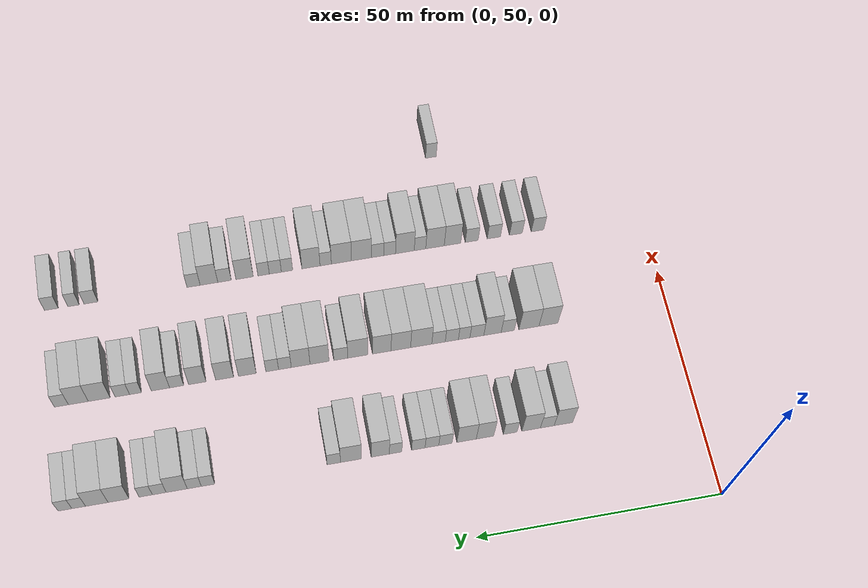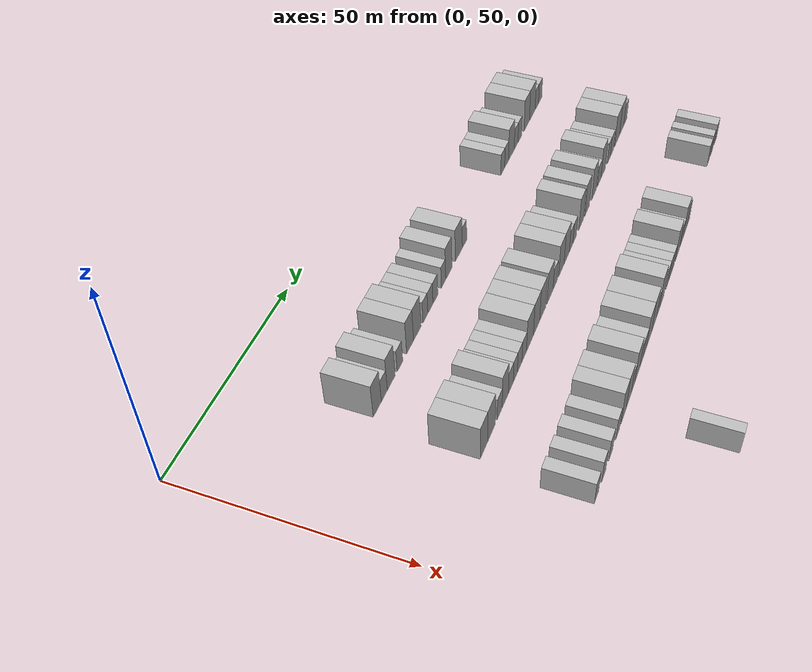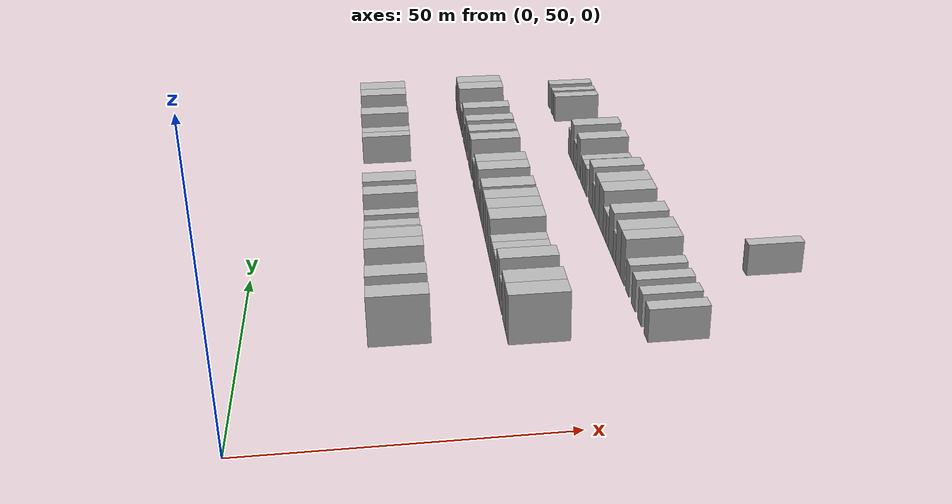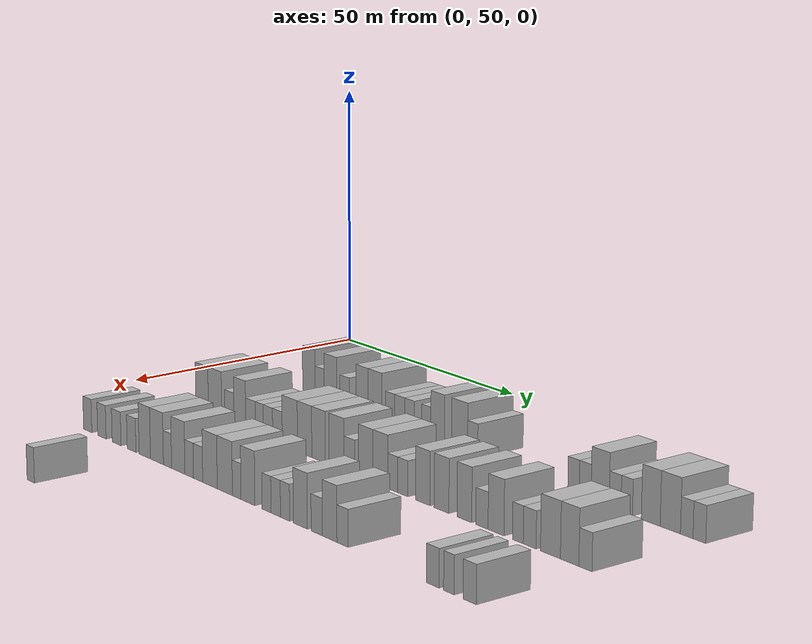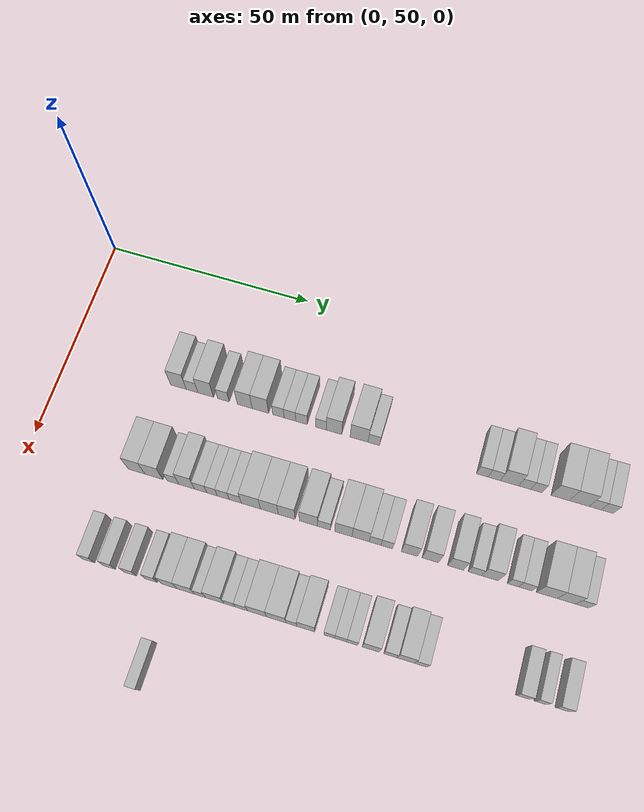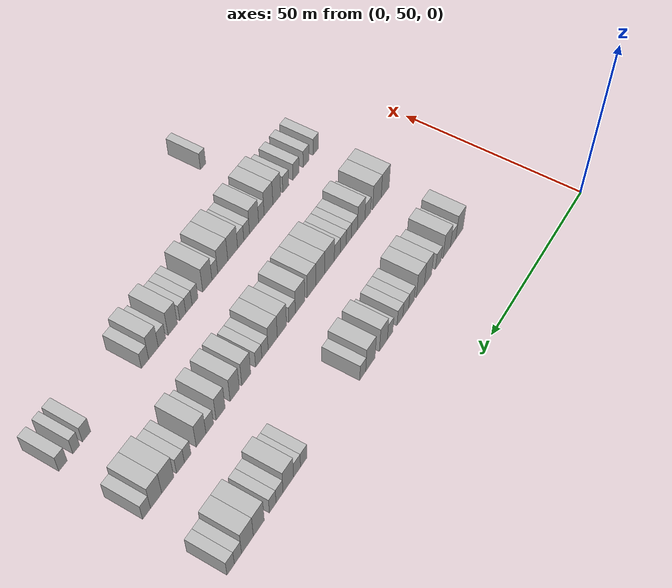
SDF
<sdf version="1.6">
 <world name="default">
  <model name="building_106">
   <static>1</static>
   <pose>25.0000 77.7003 0 0.000000 0.000000 0.000000</pose>
   <link name="link">
    <pose>0 0 4.50 0 0 0</pose>
    <collision name="collision"><geometry><box><size>10.0000 3.8656 9.0000</size></box></geometry></collision>
    <visual name="visual">
     <cast_shadows>0</cast_shadows>
     <geometry><box><size>10.0000 3.8656 9.0000</size></box></geometry>
     <material>
      <script>
       <uri>model://HANNAS_wall/materials/scripts</uri>
       <uri>model://HANNAS_wall/materials/textures</uri>
       <name>vrc/HANNAS_wall</name>
      </script>
     </material>
    </visual>
   </link>
  </model>
  <model name="building_107">
   <static>1</static>
   <pose>25.0000 81.0698 0 0.000000 0.000000 0.000000</pose>
   <link name="link">
    <pose>0 0 3.00 0 0 0</pose>
    <collision name="collision"><geometry><box><size>10.0000 2.8732 6.0000</size></box></geometry></collision>
    <visual name="visual">
     <cast_shadows>0</cast_shadows>
     <geometry><box><size>10.0000 2.8732 6.0000</size></box></geometry>
     <material>
      <script>
       <uri>model://HANNAS_wall/materials/scripts</uri>
       <uri>model://HANNAS_wall/materials/textures</uri>
       <name>vrc/HANNAS_wall</name>
      </script>
     </material>
    </visual>
   </link>
  </model>
  <model name="building_108">
   <static>1</static>
   <pose>25.0000 84.4289 0 0.000000 0.000000 0.000000</pose>
   <link name="link">
    <pose>0 0 4.50 0 0 0</pose>
    <collision name="collision"><geometry><box><size>10.0000 3.8451 9.0000</size></box></geometry></collision>
    <visual name="visual">
     <cast_shadows>0</cast_shadows>
     <geometry><box><size>10.0000 3.8451 9.0000</size></box></geometry>
     <material>
      <script>
       <uri>model://HANNAS_wall/materials/scripts</uri>
       <uri>model://HANNAS_wall/materials/textures</uri>
       <name>vrc/HANNAS_wall</name>
      </script>
     </material>
    </visual>
   </link>
  </model>
  <model name="building_109">
   <static>1</static>
   <pose>25.0000 88.7730 0 0.000000 0.000000 0.000000</pose>
   <link name="link">
    <pose>0 0 3.00 0 0 0</pose>
    <collision name="collision"><geometry><box><size>10.0000 2.8432 6.0000</size></box></geometry></collision>
    <visual name="visual">
     <cast_shadows>0</cast_shadows>
     <geometry><box><size>10.0000 2.8432 6.0000</size></box></geometry>
     <material>
      <script>
       <uri>model://HANNAS_wall/materials/scripts</uri>
       <uri>model://HANNAS_wall/materials/textures</uri>
       <name>vrc/HANNAS_wall</name>
      </script>
     </material>
    </visual>
   </link>
  </model>
  <model name="building_110">
   <static>1</static>
   <pose>25.0000 94.0052 0 0.000000 0.000000 0.000000</pose>
   <link name="link">
    <pose>0 0 4.50 0 0 0</pose>
    <collision name="collision"><geometry><box><size>10.0000 3.6212 9.0000</size></box></geometry></collision>
    <visual name="visual">
     <cast_shadows>0</cast_shadows>
     <geometry><box><size>10.0000 3.6212 9.0000</size></box></geometry>
     <material>
      <script>
       <uri>model://HANNAS_wall/materials/scripts</uri>
       <uri>model://HANNAS_wall/materials/textures</uri>
       <name>vrc/HANNAS_wall</name>
      </script>
     </material>
    </visual>
   </link>
  </model>
  <model name="building_111">
   <static>1</static>
   <pose>25.0000 97.8122 0 0.000000 0.000000 0.000000</pose>
   <link name="link">
    <pose>0 0 4.50 0 0 0</pose>
    <collision name="collision"><geometry><box><size>10.0000 3.9927 9.0000</size></box></geometry></collision>
    <visual name="visual">
     <cast_shadows>0</cast_shadows>
     <geometry><box><size>10.0000 3.9927 9.0000</size></box></geometry>
     <material>
      <script>
       <uri>model://HANNAS_wall/materials/scripts</uri>
       <uri>model://HANNAS_wall/materials/textures</uri>
       <name>vrc/HANNAS_wall</name>
      </script>
     </material>
    </visual>
   </link>
  </model>
  <model name="building_112">
   <static>1</static>
   <pose>25.0000 102.1803 0 0.000000 0.000000 0.000000</pose>
   <link name="link">
    <pose>0 0 3.00 0 0 0</pose>
    <collision name="collision"><geometry><box><size>10.0000 2.7434 6.0000</size></box></geometry></collision>
    <visual name="visual">
     <cast_shadows>0</cast_shadows>
     <geometry><box><size>10.0000 2.7434 6.0000</size></box></geometry>
     <material>
      <script>
       <uri>model://HANNAS_wall/materials/scripts</uri>
       <uri>model://HANNAS_wall/materials/textures</uri>
       <name>vrc/HANNAS_wall</name>
      </script>
     </material>
    </visual>
   </link>
  </model>
  <model name="building_113">
   <static>1</static>
   <pose>25.0000 104.9592 0 0.000000 0.000000 0.000000</pose>
   <link name="link">
    <pose>0 0 3.00 0 0 0</pose>
    <collision name="collision"><geometry><box><size>10.0000 2.8144 6.0000</size></box></geometry></collision>
    <visual name="visual">
     <cast_shadows>0</cast_shadows>
     <geometry><box><size>10.0000 2.8144 6.0000</size></box></geometry>
     <material>
      <script>
       <uri>model://HANNAS_wall/materials/scripts</uri>
       <uri>model://HANNAS_wall/materials/textures</uri>
       <name>vrc/HANNAS_wall</name>
      </script>
     </material>
    </visual>
   </link>
  </model>
  <model name="building_114">
   <static>1</static>
   <pose>25.0000 107.7493 0 0.000000 0.000000 0.000000</pose>
   <link name="link">
    <pose>0 0 3.00 0 0 0</pose>
    <collision name="collision"><geometry><box><size>10.0000 2.7658 6.0000</size></box></geometry></collision>
    <visual name="visual">
     <cast_shadows>0</cast_shadows>
     <geometry><box><size>10.0000 2.7658 6.0000</size></box></geometry>
     <material>
      <script>
       <uri>model://HANNAS_wall/materials/scripts</uri>
       <uri>model://HANNAS_wall/materials/textures</uri>
       <name>vrc/HANNAS_wall</name>
      </script>
     </material>
    </visual>
   </link>
  </model>
  <model name="building_115">
   <static>1</static>
   <pose>25.0000 112.4186 0 0.000000 0.000000 0.000000</pose>
   <link name="link">
    <pose>0 0 3.00 0 0 0</pose>
    <collision name="collision"><geometry><box><size>10.0000 2.5726 6.0000</size></box></geometry></collision>
    <visual name="visual">
     <cast_shadows>0</cast_shadows>
     <geometry><box><size>10.0000 2.5726 6.0000</size></box></geometry>
     <material>
      <script>
       <uri>model://HANNAS_wall/materials/scripts</uri>
       <uri>model://HANNAS_wall/materials/textures</uri>
       <name>vrc/HANNAS_wall</name>
      </script>
     </material>
    </visual>
   </link>
  </model>
  <model name="building_116">
   <static>1</static>
   <pose>25.0000 115.5573 0 0.000000 0.000000 0.000000</pose>
   <link name="link">
    <pose>0 0 4.50 0 0 0</pose>
    <collision name="collision"><geometry><box><size>10.0000 3.7048 9.0000</size></box></geometry></collision>
    <visual name="visual">
     <cast_shadows>0</cast_shadows>
     <geometry><box><size>10.0000 3.7048 9.0000</size></box></geometry>
     <material>
      <script>
       <uri>model://HANNAS_wall/materials/scripts</uri>
       <uri>model://HANNAS_wall/materials/textures</uri>
       <name>vrc/HANNAS_wall</name>
      </script>
     </material>
    </visual>
   </link>
  </model>
  <model name="building_117">
   <static>1</static>
   <pose>25.0000 121.5449 0 0.000000 0.000000 0.000000</pose>
   <link name="link">
    <pose>0 0 4.50 0 0 0</pose>
    <collision name="collision"><geometry><box><size>10.0000 4.2705 9.0000</size></box></geometry></collision>
    <visual name="visual">
     <cast_shadows>0</cast_shadows>
     <geometry><box><size>10.0000 4.2705 9.0000</size></box></geometry>
     <material>
      <script>
       <uri>model://HANNAS_wall/materials/scripts</uri>
       <uri>model://HANNAS_wall/materials/textures</uri>
       <name>vrc/HANNAS_wall</name>
      </script>
     </material>
    </visual>
   </link>
  </model>
  <model name="building_118">
   <static>1</static>
   <pose>25.0000 125.0437 0 0.000000 0.000000 0.000000</pose>
   <link name="link">
    <pose>0 0 3.00 0 0 0</pose>
    <collision name="collision"><geometry><box><size>10.0000 2.7271 6.0000</size></box></geometry></collision>
    <visual name="visual">
     <cast_shadows>0</cast_shadows>
     <geometry><box><size>10.0000 2.7271 6.0000</size></box></geometry>
     <material>
      <script>
       <uri>model://HANNAS_wall/materials/scripts</uri>
       <uri>model://HANNAS_wall/materials/textures</uri>
       <name>vrc/HANNAS_wall</name>
      </script>
     </material>
    </visual>
   </link>
  </model>
  <model name="building_119">
   <static>1</static>
   <pose>25.0000 150.4911 0 0.000000 0.000000 0.000000</pose>
   <link name="link">
    <pose>0 0 3.00 0 0 0</pose>
    <collision name="collision"><geometry><box><size>10.0000 2.7226 6.0000</size></box></geometry></collision>
    <visual name="visual">
     <cast_shadows>0</cast_shadows>
     <geometry><box><size>10.0000 2.7226 6.0000</size></box></geometry>
     <material>
      <script>
       <uri>model://HANNAS_wall/materials/scripts</uri>
       <uri>model://HANNAS_wall/materials/textures</uri>
       <name>vrc/HANNAS_wall</name>
      </script>
     </material>
    </visual>
   </link>
  </model>
  <model name="building_120">
   <static>1</static>
   <pose>25.0000 153.2624 0 0.000000 0.000000 0.000000</pose>
   <link name="link">
    <pose>0 0 3.00 0 0 0</pose>
    <collision name="collision"><geometry><box><size>10.0000 2.8200 6.0000</size></box></geometry></collision>
    <visual name="visual">
     <cast_shadows>0</cast_shadows>
     <geometry><box><size>10.0000 2.8200 6.0000</size></box></geometry>
     <material>
      <script>
       <uri>model://HANNAS_wall/materials/scripts</uri>
       <uri>model://HANNAS_wall/materials/textures</uri>
       <name>vrc/HANNAS_wall</name>
      </script>
     </material>
    </visual>
   </link>
  </model>
  <model name="building_121">
   <static>1</static>
   <pose>25.0000 156.7896 0 0.000000 0.000000 0.000000</pose>
   <link name="link">
    <pose>0 0 4.50 0 0 0</pose>
    <collision name="collision"><geometry><box><size>10.0000 4.2344 9.0000</size></box></geometry></collision>
    <visual name="visual">
     <cast_shadows>0</cast_shadows>
     <geometry><box><size>10.0000 4.2344 9.0000</size></box></geometry>
     <material>
      <script>
       <uri>model://HANNAS_wall/materials/scripts</uri>
       <uri>model://HANNAS_wall/materials/textures</uri>
       <name>vrc/HANNAS_wall</name>
      </script>
     </material>
    </visual>
   </link>
  </model>
  <model name="building_122">
   <static>1</static>
   <pose>25.0000 160.2867 0 0.000000 0.000000 0.000000</pose>
   <link name="link">
    <pose>0 0 3.00 0 0 0</pose>
    <collision name="collision"><geometry><box><size>10.0000 2.7598 6.0000</size></box></geometry></collision>
    <visual name="visual">
     <cast_shadows>0</cast_shadows>
     <geometry><box><size>10.0000 2.7598 6.0000</size></box></geometry>
     <material>
      <script>
       <uri>model://HANNAS_wall/materials/scripts</uri>
       <uri>model://HANNAS_wall/materials/textures</uri>
       <name>vrc/HANNAS_wall</name>
      </script>
     </material>
    </visual>
   </link>
  </model>
  <model name="building_123">
   <static>1</static>
   <pose>25.0000 162.9837 0 0.000000 0.000000 0.000000</pose>
   <link name="link">
    <pose>0 0 3.00 0 0 0</pose>
    <collision name="collision"><geometry><box><size>10.0000 2.6342 6.0000</size></box></geometry></collision>
    <visual name="visual">
     <cast_shadows>0</cast_shadows>
     <geometry><box><size>10.0000 2.6342 6.0000</size></box></geometry>
     <material>
      <script>
       <uri>model://HANNAS_wall/materials/scripts</uri>
       <uri>model://HANNAS_wall/materials/textures</uri>
       <name>vrc/HANNAS_wall</name>
      </script>
     </material>
    </visual>
   </link>
  </model>
  <model name="building_124">
   <static>1</static>
   <pose>25.0000 168.3999 0 0.000000 0.000000 0.000000</pose>
   <link name="link">
    <pose>0 0 4.50 0 0 0</pose>
    <collision name="collision"><geometry><box><size>10.0000 4.1983 9.0000</size></box></geometry></collision>
    <visual name="visual">
     <cast_shadows>0</cast_shadows>
     <geometry><box><size>10.0000 4.1983 9.0000</size></box></geometry>
     <material>
      <script>
       <uri>model://HANNAS_wall/materials/scripts</uri>
       <uri>model://HANNAS_wall/materials/textures</uri>
       <name>vrc/HANNAS_wall</name>
      </script>
     </material>
    </visual>
   </link>
  </model>
  <model name="building_125">
   <static>1</static>
   <pose>25.0000 172.7341 0 0.000000 0.000000 0.000000</pose>
   <link name="link">
    <pose>0 0 4.50 0 0 0</pose>
    <collision name="collision"><geometry><box><size>10.0000 4.4701 9.0000</size></box></geometry></collision>
    <visual name="visual">
     <cast_shadows>0</cast_shadows>
     <geometry><box><size>10.0000 4.4701 9.0000</size></box></geometry>
     <material>
      <script>
       <uri>model://HANNAS_wall/materials/scripts</uri>
       <uri>model://HANNAS_wall/materials/textures</uri>
       <name>vrc/HANNAS_wall</name>
      </script>
     </material>
    </visual>
   </link>
  </model>
  <model name="building_126">
   <static>1</static>
   <pose>25.0000 176.3176 0 0.000000 0.000000 0.000000</pose>
   <link name="link">
    <pose>0 0 3.00 0 0 0</pose>
    <collision name="collision"><geometry><box><size>10.0000 2.6971 6.0000</size></box></geometry></collision>
    <visual name="visual">
     <cast_shadows>0</cast_shadows>
     <geometry><box><size>10.0000 2.6971 6.0000</size></box></geometry>
     <material>
      <script>
       <uri>model://HANNAS_wall/materials/scripts</uri>
       <uri>model://HANNAS_wall/materials/textures</uri>
       <name>vrc/HANNAS_wall</name>
      </script>
     </material>
    </visual>
   </link>
  </model>
  <model name="building_127">
   <static>1</static>
   <pose>25.0000 179.0395 0 0.000000 0.000000 0.000000</pose>
   <link name="link">
    <pose>0 0 3.00 0 0 0</pose>
    <collision name="collision"><geometry><box><size>10.0000 2.7466 6.0000</size></box></geometry></collision>
    <visual name="visual">
     <cast_shadows>0</cast_shadows>
     <geometry><box><size>10.0000 2.7466 6.0000</size></box></geometry>
     <material>
      <script>
       <uri>model://HANNAS_wall/materials/scripts</uri>
       <uri>model://HANNAS_wall/materials/textures</uri>
       <name>vrc/HANNAS_wall</name>
      </script>
     </material>
    </visual>
   </link>
  </model>
  <model name="building_282">
   <static>1</static>
   <pose>47.0000 75.6641 0 0.000000 0.000000 0.000000</pose>
   <link name="link">
    <pose>0 0 4.50 0 0 0</pose>
    <collision name="collision"><geometry><box><size>10.0000 4.0611 9.0000</size></box></geometry></collision>
    <visual name="visual">
     <cast_shadows>0</cast_shadows>
     <geometry><box><size>10.0000 4.0611 9.0000</size></box></geometry>
     <material>
      <script>
       <uri>model://HANNAS_wall/materials/scripts</uri>
       <uri>model://HANNAS_wall/materials/textures</uri>
       <name>vrc/HANNAS_wall</name>
      </script>
     </material>
    </visual>
   </link>
  </model>
  <model name="building_283">
   <static>1</static>
   <pose>47.0000 79.8396 0 0.000000 0.000000 0.000000</pose>
   <link name="link">
    <pose>0 0 4.50 0 0 0</pose>
    <collision name="collision"><geometry><box><size>10.0000 4.2898 9.0000</size></box></geometry></collision>
    <visual name="visual">
     <cast_shadows>0</cast_shadows>
     <geometry><box><size>10.0000 4.2898 9.0000</size></box></geometry>
     <material>
      <script>
       <uri>model://HANNAS_wall/materials/scripts</uri>
       <uri>model://HANNAS_wall/materials/textures</uri>
       <name>vrc/HANNAS_wall</name>
      </script>
     </material>
    </visual>
   </link>
  </model>
  <model name="building_284">
   <static>1</static>
   <pose>47.0000 84.4039 0 0.000000 0.000000 0.000000</pose>
   <link name="link">
    <pose>0 0 3.00 0 0 0</pose>
    <collision name="collision"><geometry><box><size>10.0000 2.8387 6.0000</size></box></geometry></collision>
    <visual name="visual">
     <cast_shadows>0</cast_shadows>
     <geometry><box><size>10.0000 2.8387 6.0000</size></box></geometry>
     <material>
      <script>
       <uri>model://HANNAS_wall/materials/scripts</uri>
       <uri>model://HANNAS_wall/materials/textures</uri>
       <name>vrc/HANNAS_wall</name>
      </script>
     </material>
    </visual>
   </link>
  </model>
  <model name="building_285">
   <static>1</static>
   <pose>47.0000 87.6744 0 0.000000 0.000000 0.000000</pose>
   <link name="link">
    <pose>0 0 4.50 0 0 0</pose>
    <collision name="collision"><geometry><box><size>10.0000 3.7023 9.0000</size></box></geometry></collision>
    <visual name="visual">
     <cast_shadows>0</cast_shadows>
     <geometry><box><size>10.0000 3.7023 9.0000</size></box></geometry>
     <material>
      <script>
       <uri>model://HANNAS_wall/materials/scripts</uri>
       <uri>model://HANNAS_wall/materials/textures</uri>
       <name>vrc/HANNAS_wall</name>
      </script>
     </material>
    </visual>
   </link>
  </model>
  <model name="building_286">
   <static>1</static>
   <pose>47.0000 91.0065 0 0.000000 0.000000 0.000000</pose>
   <link name="link">
    <pose>0 0 3.00 0 0 0</pose>
    <collision name="collision"><geometry><box><size>10.0000 2.9619 6.0000</size></box></geometry></collision>
    <visual name="visual">
     <cast_shadows>0</cast_shadows>
     <geometry><box><size>10.0000 2.9619 6.0000</size></box></geometry>
     <material>
      <script>
       <uri>model://HANNAS_wall/materials/scripts</uri>
       <uri>model://HANNAS_wall/materials/textures</uri>
       <name>vrc/HANNAS_wall</name>
      </script>
     </material>
    </visual>
   </link>
  </model>
  <model name="building_287">
   <static>1</static>
   <pose>47.0000 93.7170 0 0.000000 0.000000 0.000000</pose>
   <link name="link">
    <pose>0 0 3.00 0 0 0</pose>
    <collision name="collision"><geometry><box><size>10.0000 2.4591 6.0000</size></box></geometry></collision>
    <visual name="visual">
     <cast_shadows>0</cast_shadows>
     <geometry><box><size>10.0000 2.4591 6.0000</size></box></geometry>
     <material>
      <script>
       <uri>model://HANNAS_wall/materials/scripts</uri>
       <uri>model://HANNAS_wall/materials/textures</uri>
       <name>vrc/HANNAS_wall</name>
      </script>
     </material>
    </visual>
   </link>
  </model>
  <model name="building_288">
   <static>1</static>
   <pose>47.0000 96.3422 0 0.000000 0.000000 0.000000</pose>
   <link name="link">
    <pose>0 0 3.00 0 0 0</pose>
    <collision name="collision"><geometry><box><size>10.0000 2.7913 6.0000</size></box></geometry></collision>
    <visual name="visual">
     <cast_shadows>0</cast_shadows>
     <geometry><box><size>10.0000 2.7913 6.0000</size></box></geometry>
     <material>
      <script>
       <uri>model://HANNAS_wall/materials/scripts</uri>
       <uri>model://HANNAS_wall/materials/textures</uri>
       <name>vrc/HANNAS_wall</name>
      </script>
     </material>
    </visual>
   </link>
  </model>
  <model name="building_289">
   <static>1</static>
   <pose>47.0000 99.1752 0 0.000000 0.000000 0.000000</pose>
   <link name="link">
    <pose>0 0 3.00 0 0 0</pose>
    <collision name="collision"><geometry><box><size>10.0000 2.8747 6.0000</size></box></geometry></collision>
    <visual name="visual">
     <cast_shadows>0</cast_shadows>
     <geometry><box><size>10.0000 2.8747 6.0000</size></box></geometry>
     <material>
      <script>
       <uri>model://HANNAS_wall/materials/scripts</uri>
       <uri>model://HANNAS_wall/materials/textures</uri>
       <name>vrc/HANNAS_wall</name>
      </script>
     </material>
    </visual>
   </link>
  </model>
  <model name="building_290">
   <static>1</static>
   <pose>47.0000 102.8562 0 0.000000 0.000000 0.000000</pose>
   <link name="link">
    <pose>0 0 4.50 0 0 0</pose>
    <collision name="collision"><geometry><box><size>10.0000 4.4873 9.0000</size></box></geometry></collision>
    <visual name="visual">
     <cast_shadows>0</cast_shadows>
     <geometry><box><size>10.0000 4.4873 9.0000</size></box></geometry>
     <material>
      <script>
       <uri>model://HANNAS_wall/materials/scripts</uri>
       <uri>model://HANNAS_wall/materials/textures</uri>
       <name>vrc/HANNAS_wall</name>
      </script>
     </material>
    </visual>
   </link>
  </model>
  <model name="building_291">
   <static>1</static>
   <pose>47.0000 107.1776 0 0.000000 0.000000 0.000000</pose>
   <link name="link">
    <pose>0 0 4.50 0 0 0</pose>
    <collision name="collision"><geometry><box><size>10.0000 4.1555 9.0000</size></box></geometry></collision>
    <visual name="visual">
     <cast_shadows>0</cast_shadows>
     <geometry><box><size>10.0000 4.1555 9.0000</size></box></geometry>
     <material>
      <script>
       <uri>model://HANNAS_wall/materials/scripts</uri>
       <uri>model://HANNAS_wall/materials/textures</uri>
       <name>vrc/HANNAS_wall</name>
      </script>
     </material>
    </visual>
   </link>
  </model>
  <model name="building_292">
   <static>1</static>
   <pose>47.0000 111.2121 0 0.000000 0.000000 0.000000</pose>
   <link name="link">
    <pose>0 0 4.50 0 0 0</pose>
    <collision name="collision"><geometry><box><size>10.0000 3.9135 9.0000</size></box></geometry></collision>
    <visual name="visual">
     <cast_shadows>0</cast_shadows>
     <geometry><box><size>10.0000 3.9135 9.0000</size></box></geometry>
     <material>
      <script>
       <uri>model://HANNAS_wall/materials/scripts</uri>
       <uri>model://HANNAS_wall/materials/textures</uri>
       <name>vrc/HANNAS_wall</name>
      </script>
     </material>
    </visual>
   </link>
  </model>
  <model name="building_293">
   <static>1</static>
   <pose>47.0000 116.2859 0 0.000000 0.000000 0.000000</pose>
   <link name="link">
    <pose>0 0 4.50 0 0 0</pose>
    <collision name="collision"><geometry><box><size>10.0000 4.2340 9.0000</size></box></geometry></collision>
    <visual name="visual">
     <cast_shadows>0</cast_shadows>
     <geometry><box><size>10.0000 4.2340 9.0000</size></box></geometry>
     <material>
      <script>
       <uri>model://HANNAS_wall/materials/scripts</uri>
       <uri>model://HANNAS_wall/materials/textures</uri>
       <name>vrc/HANNAS_wall</name>
      </script>
     </material>
    </visual>
   </link>
  </model>
  <model name="building_294">
   <static>1</static>
   <pose>47.0000 119.8621 0 0.000000 0.000000 0.000000</pose>
   <link name="link">
    <pose>0 0 3.00 0 0 0</pose>
    <collision name="collision"><geometry><box><size>10.0000 2.9184 6.0000</size></box></geometry></collision>
    <visual name="visual">
     <cast_shadows>0</cast_shadows>
     <geometry><box><size>10.0000 2.9184 6.0000</size></box></geometry>
     <material>
      <script>
       <uri>model://HANNAS_wall/materials/scripts</uri>
       <uri>model://HANNAS_wall/materials/textures</uri>
       <name>vrc/HANNAS_wall</name>
      </script>
     </material>
    </visual>
   </link>
  </model>
  <model name="building_295">
   <static>1</static>
   <pose>47.0000 124.3207 0 0.000000 0.000000 0.000000</pose>
   <link name="link">
    <pose>0 0 4.50 0 0 0</pose>
    <collision name="collision"><geometry><box><size>10.0000 3.9989 9.0000</size></box></geometry></collision>
    <visual name="visual">
     <cast_shadows>0</cast_shadows>
     <geometry><box><size>10.0000 3.9989 9.0000</size></box></geometry>
     <material>
      <script>
       <uri>model://HANNAS_wall/materials/scripts</uri>
       <uri>model://HANNAS_wall/materials/textures</uri>
       <name>vrc/HANNAS_wall</name>
      </script>
     </material>
    </visual>
   </link>
  </model>
  <model name="building_296">
   <static>1</static>
   <pose>47.0000 128.2807 0 0.000000 0.000000 0.000000</pose>
   <link name="link">
    <pose>0 0 4.50 0 0 0</pose>
    <collision name="collision"><geometry><box><size>10.0000 3.9210 9.0000</size></box></geometry></collision>
    <visual name="visual">
     <cast_shadows>0</cast_shadows>
     <geometry><box><size>10.0000 3.9210 9.0000</size></box></geometry>
     <material>
      <script>
       <uri>model://HANNAS_wall/materials/scripts</uri>
       <uri>model://HANNAS_wall/materials/textures</uri>
       <name>vrc/HANNAS_wall</name>
      </script>
     </material>
    </visual>
   </link>
  </model>
  <model name="building_297">
   <static>1</static>
   <pose>47.0000 131.5737 0 0.000000 0.000000 0.000000</pose>
   <link name="link">
    <pose>0 0 3.00 0 0 0</pose>
    <collision name="collision"><geometry><box><size>10.0000 2.6651 6.0000</size></box></geometry></collision>
    <visual name="visual">
     <cast_shadows>0</cast_shadows>
     <geometry><box><size>10.0000 2.6651 6.0000</size></box></geometry>
     <material>
      <script>
       <uri>model://HANNAS_wall/materials/scripts</uri>
       <uri>model://HANNAS_wall/materials/textures</uri>
       <name>vrc/HANNAS_wall</name>
      </script>
     </material>
    </visual>
   </link>
  </model>
  <model name="building_298">
   <static>1</static>
   <pose>47.0000 134.2347 0 0.000000 0.000000 0.000000</pose>
   <link name="link">
    <pose>0 0 3.00 0 0 0</pose>
    <collision name="collision"><geometry><box><size>10.0000 2.6568 6.0000</size></box></geometry></collision>
    <visual name="visual">
     <cast_shadows>0</cast_shadows>
     <geometry><box><size>10.0000 2.6568 6.0000</size></box></geometry>
     <material>
      <script>
       <uri>model://HANNAS_wall/materials/scripts</uri>
       <uri>model://HANNAS_wall/materials/textures</uri>
       <name>vrc/HANNAS_wall</name>
      </script>
     </material>
    </visual>
   </link>
  </model>
  <model name="building_299">
   <static>1</static>
   <pose>47.0000 139.4149 0 0.000000 0.000000 0.000000</pose>
   <link name="link">
    <pose>0 0 4.50 0 0 0</pose>
    <collision name="collision"><geometry><box><size>10.0000 3.7036 9.0000</size></box></geometry></collision>
    <visual name="visual">
     <cast_shadows>0</cast_shadows>
     <geometry><box><size>10.0000 3.7036 9.0000</size></box></geometry>
     <material>
      <script>
       <uri>model://HANNAS_wall/materials/scripts</uri>
       <uri>model://HANNAS_wall/materials/textures</uri>
       <name>vrc/HANNAS_wall</name>
      </script>
     </material>
    </visual>
   </link>
  </model>
  <model name="building_300">
   <static>1</static>
   <pose>47.0000 144.1381 0 0.000000 0.000000 0.000000</pose>
   <link name="link">
    <pose>0 0 4.50 0 0 0</pose>
    <collision name="collision"><geometry><box><size>10.0000 3.7428 9.0000</size></box></geometry></collision>
    <visual name="visual">
     <cast_shadows>0</cast_shadows>
     <geometry><box><size>10.0000 3.7428 9.0000</size></box></geometry>
     <material>
      <script>
       <uri>model://HANNAS_wall/materials/scripts</uri>
       <uri>model://HANNAS_wall/materials/textures</uri>
       <name>vrc/HANNAS_wall</name>
      </script>
     </material>
    </visual>
   </link>
  </model>
  <model name="building_301">
   <static>1</static>
   <pose>47.0000 149.8198 0 0.000000 0.000000 0.000000</pose>
   <link name="link">
    <pose>0 0 4.50 0 0 0</pose>
    <collision name="collision"><geometry><box><size>10.0000 3.6206 9.0000</size></box></geometry></collision>
    <visual name="visual">
     <cast_shadows>0</cast_shadows>
     <geometry><box><size>10.0000 3.6206 9.0000</size></box></geometry>
     <material>
      <script>
       <uri>model://HANNAS_wall/materials/scripts</uri>
       <uri>model://HANNAS_wall/materials/textures</uri>
       <name>vrc/HANNAS_wall</name>
      </script>
     </material>
    </visual>
   </link>
  </model>
  <model name="building_302">
   <static>1</static>
   <pose>47.0000 154.1036 0 0.000000 0.000000 0.000000</pose>
   <link name="link">
    <pose>0 0 3.00 0 0 0</pose>
    <collision name="collision"><geometry><box><size>10.0000 2.9469 6.0000</size></box></geometry></collision>
    <visual name="visual">
     <cast_shadows>0</cast_shadows>
     <geometry><box><size>10.0000 2.9469 6.0000</size></box></geometry>
     <material>
      <script>
       <uri>model://HANNAS_wall/materials/scripts</uri>
       <uri>model://HANNAS_wall/materials/textures</uri>
       <name>vrc/HANNAS_wall</name>
      </script>
     </material>
    </visual>
   </link>
  </model>
  <model name="building_303">
   <static>1</static>
   <pose>47.0000 157.4701 0 0.000000 0.000000 0.000000</pose>
   <link name="link">
    <pose>0 0 4.50 0 0 0</pose>
    <collision name="collision"><geometry><box><size>10.0000 3.7861 9.0000</size></box></geometry></collision>
    <visual name="visual">
     <cast_shadows>0</cast_shadows>
     <geometry><box><size>10.0000 3.7861 9.0000</size></box></geometry>
     <material>
      <script>
       <uri>model://HANNAS_wall/materials/scripts</uri>
       <uri>model://HANNAS_wall/materials/textures</uri>
       <name>vrc/HANNAS_wall</name>
      </script>
     </material>
    </visual>
   </link>
  </model>
  <model name="building_304">
   <static>1</static>
   <pose>47.0000 162.6105 0 0.000000 0.000000 0.000000</pose>
   <link name="link">
    <pose>0 0 3.00 0 0 0</pose>
    <collision name="collision"><geometry><box><size>10.0000 2.4948 6.0000</size></box></geometry></collision>
    <visual name="visual">
     <cast_shadows>0</cast_shadows>
     <geometry><box><size>10.0000 2.4948 6.0000</size></box></geometry>
     <material>
      <script>
       <uri>model://HANNAS_wall/materials/scripts</uri>
       <uri>model://HANNAS_wall/materials/textures</uri>
       <name>vrc/HANNAS_wall</name>
      </script>
     </material>
    </visual>
   </link>
  </model>
  <model name="building_305">
   <static>1</static>
   <pose>47.0000 165.3369 0 0.000000 0.000000 0.000000</pose>
   <link name="link">
    <pose>0 0 3.00 0 0 0</pose>
    <collision name="collision"><geometry><box><size>10.0000 2.9578 6.0000</size></box></geometry></collision>
    <visual name="visual">
     <cast_shadows>0</cast_shadows>
     <geometry><box><size>10.0000 2.9578 6.0000</size></box></geometry>
     <material>
      <script>
       <uri>model://HANNAS_wall/materials/scripts</uri>
       <uri>model://HANNAS_wall/materials/textures</uri>
       <name>vrc/HANNAS_wall</name>
      </script>
     </material>
    </visual>
   </link>
  </model>
  <model name="building_306">
   <static>1</static>
   <pose>47.0000 170.0636 0 0.000000 0.000000 0.000000</pose>
   <link name="link">
    <pose>0 0 4.50 0 0 0</pose>
    <collision name="collision"><geometry><box><size>10.0000 4.4955 9.0000</size></box></geometry></collision>
    <visual name="visual">
     <cast_shadows>0</cast_shadows>
     <geometry><box><size>10.0000 4.4955 9.0000</size></box></geometry>
     <material>
      <script>
       <uri>model://HANNAS_wall/materials/scripts</uri>
       <uri>model://HANNAS_wall/materials/textures</uri>
       <name>vrc/HANNAS_wall</name>
      </script>
     </material>
    </visual>
   </link>
  </model>
  <model name="building_307">
   <static>1</static>
   <pose>47.0000 174.3546 0 0.000000 0.000000 0.000000</pose>
   <link name="link">
    <pose>0 0 4.50 0 0 0</pose>
    <collision name="collision"><geometry><box><size>10.0000 4.0865 9.0000</size></box></geometry></collision>
    <visual name="visual">
     <cast_shadows>0</cast_shadows>
     <geometry><box><size>10.0000 4.0865 9.0000</size></box></geometry>
     <material>
      <script>
       <uri>model://HANNAS_wall/materials/scripts</uri>
       <uri>model://HANNAS_wall/materials/textures</uri>
       <name>vrc/HANNAS_wall</name>
      </script>
     </material>
    </visual>
   </link>
  </model>
  <model name="building_308">
   <static>1</static>
   <pose>47.0000 177.8245 0 0.000000 0.000000 0.000000</pose>
   <link name="link">
    <pose>0 0 3.00 0 0 0</pose>
    <collision name="collision"><geometry><box><size>10.0000 2.8535 6.0000</size></box></geometry></collision>
    <visual name="visual">
     <cast_shadows>0</cast_shadows>
     <geometry><box><size>10.0000 2.8535 6.0000</size></box></geometry>
     <material>
      <script>
       <uri>model://HANNAS_wall/materials/scripts</uri>
       <uri>model://HANNAS_wall/materials/textures</uri>
       <name>vrc/HANNAS_wall</name>
      </script>
     </material>
    </visual>
   </link>
  </model>
  <model name="building_476">
   <static>1</static>
   <pose>69.0000 72.9082 0 0.000000 0.000000 0.000000</pose>
   <link name="link">
    <pose>0 0 3.00 0 0 0</pose>
    <collision name="collision"><geometry><box><size>10.0000 2.7704 6.0000</size></box></geometry></collision>
    <visual name="visual">
     <cast_shadows>0</cast_shadows>
     <geometry><box><size>10.0000 2.7704 6.0000</size></box></geometry>
     <material>
      <script>
       <uri>model://HANNAS_wall/materials/scripts</uri>
       <uri>model://HANNAS_wall/materials/textures</uri>
       <name>vrc/HANNAS_wall</name>
      </script>
     </material>
    </visual>
   </link>
  </model>
  <model name="building_477">
   <static>1</static>
   <pose>69.0000 77.7079 0 0.000000 0.000000 0.000000</pose>
   <link name="link">
    <pose>0 0 3.00 0 0 0</pose>
    <collision name="collision"><geometry><box><size>10.0000 2.8288 6.0000</size></box></geometry></collision>
    <visual name="visual">
     <cast_shadows>0</cast_shadows>
     <geometry><box><size>10.0000 2.8288 6.0000</size></box></geometry>
     <material>
      <script>
       <uri>model://HANNAS_wall/materials/scripts</uri>
       <uri>model://HANNAS_wall/materials/textures</uri>
       <name>vrc/HANNAS_wall</name>
      </script>
     </material>
    </visual>
   </link>
  </model>
  <model name="building_478">
   <static>1</static>
   <pose>69.0000 82.5819 0 0.000000 0.000000 0.000000</pose>
   <link name="link">
    <pose>0 0 3.00 0 0 0</pose>
    <collision name="collision"><geometry><box><size>10.0000 2.9193 6.0000</size></box></geometry></collision>
    <visual name="visual">
     <cast_shadows>0</cast_shadows>
     <geometry><box><size>10.0000 2.9193 6.0000</size></box></geometry>
     <material>
      <script>
       <uri>model://HANNAS_wall/materials/scripts</uri>
       <uri>model://HANNAS_wall/materials/textures</uri>
       <name>vrc/HANNAS_wall</name>
      </script>
     </material>
    </visual>
   </link>
  </model>
  <model name="building_479">
   <static>1</static>
   <pose>69.0000 87.4578 0 0.000000 0.000000 0.000000</pose>
   <link name="link">
    <pose>0 0 3.00 0 0 0</pose>
    <collision name="collision"><geometry><box><size>10.0000 2.8324 6.0000</size></box></geometry></collision>
    <visual name="visual">
     <cast_shadows>0</cast_shadows>
     <geometry><box><size>10.0000 2.8324 6.0000</size></box></geometry>
     <material>
      <script>
       <uri>model://HANNAS_wall/materials/scripts</uri>
       <uri>model://HANNAS_wall/materials/textures</uri>
       <name>vrc/HANNAS_wall</name>
      </script>
     </material>
    </visual>
   </link>
  </model>
  <model name="building_480">
   <static>1</static>
   <pose>69.0000 91.6921 0 0.000000 0.000000 0.000000</pose>
   <link name="link">
    <pose>0 0 4.50 0 0 0</pose>
    <collision name="collision"><geometry><box><size>10.0000 3.6362 9.0000</size></box></geometry></collision>
    <visual name="visual">
     <cast_shadows>0</cast_shadows>
     <geometry><box><size>10.0000 3.6362 9.0000</size></box></geometry>
     <material>
      <script>
       <uri>model://HANNAS_wall/materials/scripts</uri>
       <uri>model://HANNAS_wall/materials/textures</uri>
       <name>vrc/HANNAS_wall</name>
      </script>
     </material>
    </visual>
   </link>
  </model>
  <model name="building_481">
   <static>1</static>
   <pose>69.0000 95.5326 0 0.000000 0.000000 0.000000</pose>
   <link name="link">
    <pose>0 0 4.50 0 0 0</pose>
    <collision name="collision"><geometry><box><size>10.0000 4.0450 9.0000</size></box></geometry></collision>
    <visual name="visual">
     <cast_shadows>0</cast_shadows>
     <geometry><box><size>10.0000 4.0450 9.0000</size></box></geometry>
     <material>
      <script>
       <uri>model://HANNAS_wall/materials/scripts</uri>
       <uri>model://HANNAS_wall/materials/textures</uri>
       <name>vrc/HANNAS_wall</name>
      </script>
     </material>
    </visual>
   </link>
  </model>
  <model name="building_482">
   <static>1</static>
   <pose>69.0000 98.8135 0 0.000000 0.000000 0.000000</pose>
   <link name="link">
    <pose>0 0 3.00 0 0 0</pose>
    <collision name="collision"><geometry><box><size>10.0000 2.5167 6.0000</size></box></geometry></collision>
    <visual name="visual">
     <cast_shadows>0</cast_shadows>
     <geometry><box><size>10.0000 2.5167 6.0000</size></box></geometry>
     <material>
      <script>
       <uri>model://HANNAS_wall/materials/scripts</uri>
       <uri>model://HANNAS_wall/materials/textures</uri>
       <name>vrc/HANNAS_wall</name>
      </script>
     </material>
    </visual>
   </link>
  </model>
  <model name="building_483">
   <static>1</static>
   <pose>69.0000 102.1199 0 0.000000 0.000000 0.000000</pose>
   <link name="link">
    <pose>0 0 4.50 0 0 0</pose>
    <collision name="collision"><geometry><box><size>10.0000 4.0962 9.0000</size></box></geometry></collision>
    <visual name="visual">
     <cast_shadows>0</cast_shadows>
     <geometry><box><size>10.0000 4.0962 9.0000</size></box></geometry>
     <material>
      <script>
       <uri>model://HANNAS_wall/materials/scripts</uri>
       <uri>model://HANNAS_wall/materials/textures</uri>
       <name>vrc/HANNAS_wall</name>
      </script>
     </material>
    </visual>
   </link>
  </model>
  <model name="building_484">
   <static>1</static>
   <pose>69.0000 105.4418 0 0.000000 0.000000 0.000000</pose>
   <link name="link">
    <pose>0 0 3.00 0 0 0</pose>
    <collision name="collision"><geometry><box><size>10.0000 2.5477 6.0000</size></box></geometry></collision>
    <visual name="visual">
     <cast_shadows>0</cast_shadows>
     <geometry><box><size>10.0000 2.5477 6.0000</size></box></geometry>
     <material>
      <script>
       <uri>model://HANNAS_wall/materials/scripts</uri>
       <uri>model://HANNAS_wall/materials/textures</uri>
       <name>vrc/HANNAS_wall</name>
      </script>
     </material>
    </visual>
   </link>
  </model>
  <model name="building_485">
   <static>1</static>
   <pose>69.0000 108.0973 0 0.000000 0.000000 0.000000</pose>
   <link name="link">
    <pose>0 0 3.00 0 0 0</pose>
    <collision name="collision"><geometry><box><size>10.0000 2.7632 6.0000</size></box></geometry></collision>
    <visual name="visual">
     <cast_shadows>0</cast_shadows>
     <geometry><box><size>10.0000 2.7632 6.0000</size></box></geometry>
     <material>
      <script>
       <uri>model://HANNAS_wall/materials/scripts</uri>
       <uri>model://HANNAS_wall/materials/textures</uri>
       <name>vrc/HANNAS_wall</name>
      </script>
     </material>
    </visual>
   </link>
  </model>
  <model name="building_486">
   <static>1</static>
   <pose>69.0000 111.6259 0 0.000000 0.000000 0.000000</pose>
   <link name="link">
    <pose>0 0 4.50 0 0 0</pose>
    <collision name="collision"><geometry><box><size>10.0000 4.2941 9.0000</size></box></geometry></collision>
    <visual name="visual">
     <cast_shadows>0</cast_shadows>
     <geometry><box><size>10.0000 4.2941 9.0000</size></box></geometry>
     <material>
      <script>
       <uri>model://HANNAS_wall/materials/scripts</uri>
       <uri>model://HANNAS_wall/materials/textures</uri>
       <name>vrc/HANNAS_wall</name>
      </script>
     </material>
    </visual>
   </link>
  </model>
  <model name="building_487">
   <static>1</static>
   <pose>69.0000 115.9509 0 0.000000 0.000000 0.000000</pose>
   <link name="link">
    <pose>0 0 4.50 0 0 0</pose>
    <collision name="collision"><geometry><box><size>10.0000 4.3560 9.0000</size></box></geometry></collision>
    <visual name="visual">
     <cast_shadows>0</cast_shadows>
     <geometry><box><size>10.0000 4.3560 9.0000</size></box></geometry>
     <material>
      <script>
       <uri>model://HANNAS_wall/materials/scripts</uri>
       <uri>model://HANNAS_wall/materials/textures</uri>
       <name>vrc/HANNAS_wall</name>
      </script>
     </material>
    </visual>
   </link>
  </model>
  <model name="building_488">
   <static>1</static>
   <pose>69.0000 119.3606 0 0.000000 0.000000 0.000000</pose>
   <link name="link">
    <pose>0 0 3.00 0 0 0</pose>
    <collision name="collision"><geometry><box><size>10.0000 2.4634 6.0000</size></box></geometry></collision>
    <visual name="visual">
     <cast_shadows>0</cast_shadows>
     <geometry><box><size>10.0000 2.4634 6.0000</size></box></geometry>
     <material>
      <script>
       <uri>model://HANNAS_wall/materials/scripts</uri>
       <uri>model://HANNAS_wall/materials/textures</uri>
       <name>vrc/HANNAS_wall</name>
      </script>
     </material>
    </visual>
   </link>
  </model>
  <model name="building_489">
   <static>1</static>
   <pose>69.0000 122.5477 0 0.000000 0.000000 0.000000</pose>
   <link name="link">
    <pose>0 0 4.50 0 0 0</pose>
    <collision name="collision"><geometry><box><size>10.0000 3.9108 9.0000</size></box></geometry></collision>
    <visual name="visual">
     <cast_shadows>0</cast_shadows>
     <geometry><box><size>10.0000 3.9108 9.0000</size></box></geometry>
     <material>
      <script>
       <uri>model://HANNAS_wall/materials/scripts</uri>
       <uri>model://HANNAS_wall/materials/textures</uri>
       <name>vrc/HANNAS_wall</name>
      </script>
     </material>
    </visual>
   </link>
  </model>
  <model name="building_490">
   <static>1</static>
   <pose>69.0000 127.7232 0 0.000000 0.000000 0.000000</pose>
   <link name="link">
    <pose>0 0 3.00 0 0 0</pose>
    <collision name="collision"><geometry><box><size>10.0000 2.4402 6.0000</size></box></geometry></collision>
    <visual name="visual">
     <cast_shadows>0</cast_shadows>
     <geometry><box><size>10.0000 2.4402 6.0000</size></box></geometry>
     <material>
      <script>
       <uri>model://HANNAS_wall/materials/scripts</uri>
       <uri>model://HANNAS_wall/materials/textures</uri>
       <name>vrc/HANNAS_wall</name>
      </script>
     </material>
    </visual>
   </link>
  </model>
  <model name="building_491">
   <static>1</static>
   <pose>69.0000 130.2403 0 0.000000 0.000000 0.000000</pose>
   <link name="link">
    <pose>0 0 3.00 0 0 0</pose>
    <collision name="collision"><geometry><box><size>10.0000 2.5940 6.0000</size></box></geometry></collision>
    <visual name="visual">
     <cast_shadows>0</cast_shadows>
     <geometry><box><size>10.0000 2.5940 6.0000</size></box></geometry>
     <material>
      <script>
       <uri>model://HANNAS_wall/materials/scripts</uri>
       <uri>model://HANNAS_wall/materials/textures</uri>
       <name>vrc/HANNAS_wall</name>
      </script>
     </material>
    </visual>
   </link>
  </model>
  <model name="building_492">
   <static>1</static>
   <pose>69.0000 132.7669 0 0.000000 0.000000 0.000000</pose>
   <link name="link">
    <pose>0 0 3.00 0 0 0</pose>
    <collision name="collision"><geometry><box><size>10.0000 2.4592 6.0000</size></box></geometry></collision>
    <visual name="visual">
     <cast_shadows>0</cast_shadows>
     <geometry><box><size>10.0000 2.4592 6.0000</size></box></geometry>
     <material>
      <script>
       <uri>model://HANNAS_wall/materials/scripts</uri>
       <uri>model://HANNAS_wall/materials/textures</uri>
       <name>vrc/HANNAS_wall</name>
      </script>
     </material>
    </visual>
   </link>
  </model>
  <model name="building_493">
   <static>1</static>
   <pose>69.0000 136.8639 0 0.000000 0.000000 0.000000</pose>
   <link name="link">
    <pose>0 0 4.50 0 0 0</pose>
    <collision name="collision"><geometry><box><size>10.0000 3.7349 9.0000</size></box></geometry></collision>
    <visual name="visual">
     <cast_shadows>0</cast_shadows>
     <geometry><box><size>10.0000 3.7349 9.0000</size></box></geometry>
     <material>
      <script>
       <uri>model://HANNAS_wall/materials/scripts</uri>
       <uri>model://HANNAS_wall/materials/textures</uri>
       <name>vrc/HANNAS_wall</name>
      </script>
     </material>
    </visual>
   </link>
  </model>
  <model name="building_494">
   <static>1</static>
   <pose>69.0000 141.1772 0 0.000000 0.000000 0.000000</pose>
   <link name="link">
    <pose>0 0 3.00 0 0 0</pose>
    <collision name="collision"><geometry><box><size>10.0000 2.8916 6.0000</size></box></geometry></collision>
    <visual name="visual">
     <cast_shadows>0</cast_shadows>
     <geometry><box><size>10.0000 2.8916 6.0000</size></box></geometry>
     <material>
      <script>
       <uri>model://HANNAS_wall/materials/scripts</uri>
       <uri>model://HANNAS_wall/materials/textures</uri>
       <name>vrc/HANNAS_wall</name>
      </script>
     </material>
    </visual>
   </link>
  </model>
  <model name="building_495">
   <static>1</static>
   <pose>69.0000 144.5143 0 0.000000 0.000000 0.000000</pose>
   <link name="link">
    <pose>0 0 4.50 0 0 0</pose>
    <collision name="collision"><geometry><box><size>10.0000 3.7826 9.0000</size></box></geometry></collision>
    <visual name="visual">
     <cast_shadows>0</cast_shadows>
     <geometry><box><size>10.0000 3.7826 9.0000</size></box></geometry>
     <material>
      <script>
       <uri>model://HANNAS_wall/materials/scripts</uri>
       <uri>model://HANNAS_wall/materials/textures</uri>
       <name>vrc/HANNAS_wall</name>
      </script>
     </material>
    </visual>
   </link>
  </model>
  <model name="building_496">
   <static>1</static>
   <pose>69.0000 147.8153 0 0.000000 0.000000 0.000000</pose>
   <link name="link">
    <pose>0 0 3.00 0 0 0</pose>
    <collision name="collision"><geometry><box><size>10.0000 2.8195 6.0000</size></box></geometry></collision>
    <visual name="visual">
     <cast_shadows>0</cast_shadows>
     <geometry><box><size>10.0000 2.8195 6.0000</size></box></geometry>
     <material>
      <script>
       <uri>model://HANNAS_wall/materials/scripts</uri>
       <uri>model://HANNAS_wall/materials/textures</uri>
       <name>vrc/HANNAS_wall</name>
      </script>
     </material>
    </visual>
   </link>
  </model>
  <model name="building_497">
   <static>1</static>
   <pose>69.0000 169.6525 0 0.000000 0.000000 0.000000</pose>
   <link name="link">
    <pose>0 0 3.00 0 0 0</pose>
    <collision name="collision"><geometry><box><size>10.0000 2.9516 6.0000</size></box></geometry></collision>
    <visual name="visual">
     <cast_shadows>0</cast_shadows>
     <geometry><box><size>10.0000 2.9516 6.0000</size></box></geometry>
     <material>
      <script>
       <uri>model://HANNAS_wall/materials/scripts</uri>
       <uri>model://HANNAS_wall/materials/textures</uri>
       <name>vrc/HANNAS_wall</name>
      </script>
     </material>
    </visual>
   </link>
  </model>
  <model name="building_498">
   <static>1</static>
   <pose>69.0000 173.3353 0 0.000000 0.000000 0.000000</pose>
   <link name="link">
    <pose>0 0 3.00 0 0 0</pose>
    <collision name="collision"><geometry><box><size>10.0000 2.4140 6.0000</size></box></geometry></collision>
    <visual name="visual">
     <cast_shadows>0</cast_shadows>
     <geometry><box><size>10.0000 2.4140 6.0000</size></box></geometry>
     <material>
      <script>
       <uri>model://HANNAS_wall/materials/scripts</uri>
       <uri>model://HANNAS_wall/materials/textures</uri>
       <name>vrc/HANNAS_wall</name>
      </script>
     </material>
    </visual>
   </link>
  </model>
  <model name="building_499">
   <static>1</static>
   <pose>69.0000 178.0042 0 0.000000 0.000000 0.000000</pose>
   <link name="link">
    <pose>0 0 3.00 0 0 0</pose>
    <collision name="collision"><geometry><box><size>10.0000 2.9238 6.0000</size></box></geometry></collision>
    <visual name="visual">
     <cast_shadows>0</cast_shadows>
     <geometry><box><size>10.0000 2.9238 6.0000</size></box></geometry>
     <material>
      <script>
       <uri>model://HANNAS_wall/materials/scripts</uri>
       <uri>model://HANNAS_wall/materials/textures</uri>
       <name>vrc/HANNAS_wall</name>
      </script>
     </material>
    </visual>
   </link>
  </model>
  <model name="building_650">
   <static>1</static>
   <pose>91.0000 92.0567 0 0.000000 0.000000 0.000000</pose>
   <link name="link">
    <pose>0 0 3.00 0 0 0</pose>
    <collision name="collision"><geometry><box><size>10.0000 2.4012 6.0000</size></box></geometry></collision>
    <visual name="visual">
     <cast_shadows>0</cast_shadows>
     <geometry><box><size>10.0000 2.4012 6.0000</size></box></geometry>
     <material>
      <script>
       <uri>model://HANNAS_wall/materials/scripts</uri>
       <uri>model://HANNAS_wall/materials/textures</uri>
       <name>vrc/HANNAS_wall</name>
      </script>
     </material>
    </visual>
   </link>
  </model>
 </world>
</sdf>
